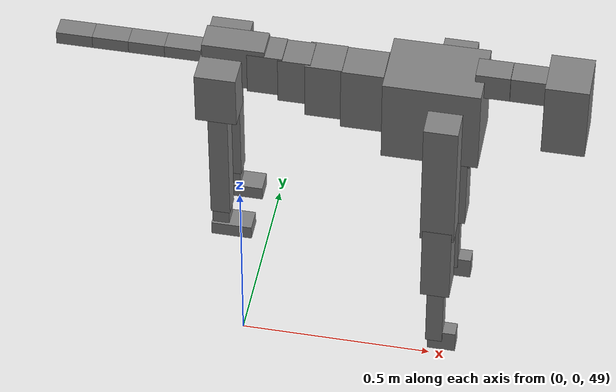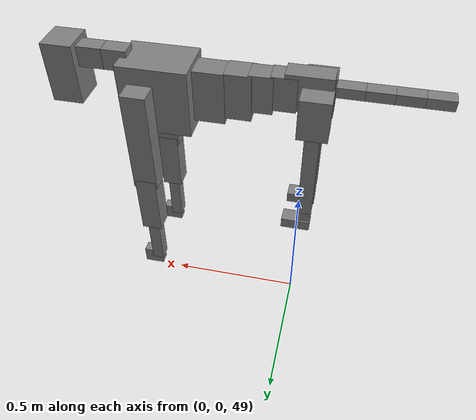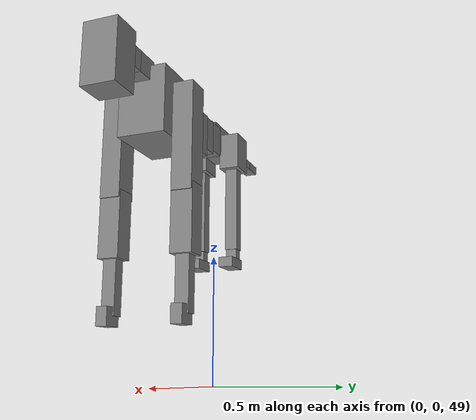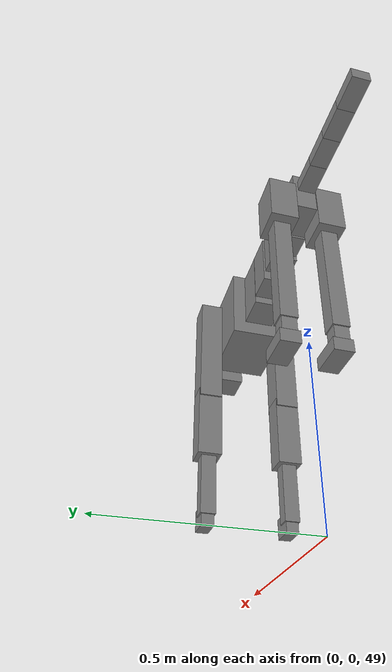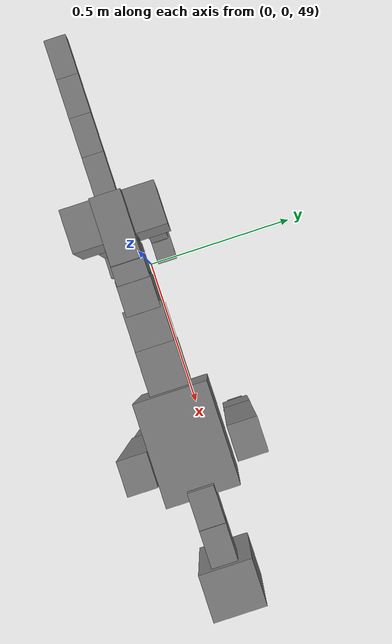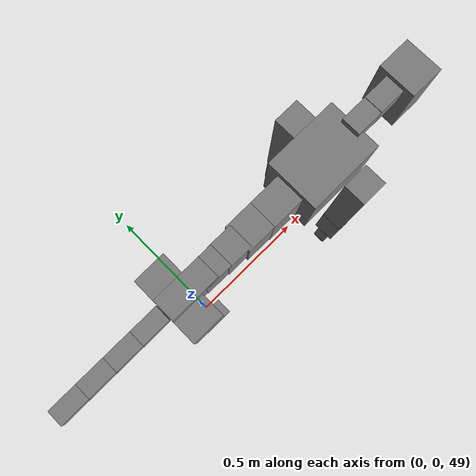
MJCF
<mujoco model="dog">

    <default>
        <joint armature="0.02" stiffness="1" damping="0.2" limited="true"/>
        <geom condim="3" friction="1 0.05 0.05" margin="0.01"/>
        <motor ctrllimited="true" ctrlrange="-1.0 1.0" forcelimited="true" gear="50"/>
    </default>

    <compiler inertiafromgeom="true" angle="radian"/>

    <option timestep="0.016" iterations="50" tolerance="1e-10" solver="Newton" jacobian="dense" cone="pyramidal"/>

    <size nconmax="20000" njmax="60000" nstack="5000000"/>
    <visual>
        <map force="0.1" zfar="30"/>
        <rgba haze="0.15 0.25 0.35 1"/>
        <quality shadowsize="2048"/>
        <global offwidth="800" offheight="800"/>
    </visual>

    <asset>
        <texture type="skybox" builtin="gradient" rgb1="0.3 0.5 0.7" rgb2="0 0 0" width="512" height="512"/>
        <texture name="texplane" type="2d" builtin="checker" rgb1=".2 .3 .4" rgb2=".1 0.15 0.2" width="512" height="512"
                 mark="cross" markrgb=".8 .8 .8"/>
        <texture name="texgeom" type="cube" builtin="flat" mark="cross" width="127" height="1278" rgb1="0.8 0.6 0.4"
                 rgb2="0.8 0.6 0.4" markrgb="1 1 1" random="0.01"/>

        <material name="matplane" reflectance="0.3" texture="texplane" texrepeat="1 1" texuniform="true"/>
        <material name="matgeom" texture="texgeom" texuniform="true" rgba="0.8 0.6 .4 1"/>
    </asset>

    <worldbody>
        <geom name="floor" pos="0 0 0" size="0 0 .25" type="plane" material="matplane" condim="3"/>

        <light directional="false" diffuse=".2 .2 .2" specular="0 0 0" pos="0 0 5" dir="0 0 -1" castshadow="false"/>
        <light mode="targetbodycom" target="torso" directional="false" diffuse=".8 .8 .8" specular="0.3 0.3 0.3"
               pos="0 0 4.0" dir="0 0 -1"/>

        <body name="root" pos="0 0 50">
            <freejoint name="root_1"/>
            <geom type="box" pos="0 0 -0.02" size="0.0774  0.0358  0.063" density="2030"/>

            <body name="spine1" pos="0.054 0 0">
                <joint name="spine1_y" axis="0 1 0" range="0 0.7" limited="true"/>
                <geom type="box" pos="0.02375 0 -0.03" size="0.04375  0.0375  0.05985" density="2030"/>

                <body name="spine2" pos="0.0612 0 0">
                    <joint name="spine2_y" axis="0 1 0" range="-0.15 0.15" limited="true"/>
                    <geom type="box" pos="0.03555  0  -0.04" size="0.04055  0.039  0.06615" density="2030"/>

                    <body name="spine3" pos="0.0730 0 0">
                        <joint name="spine3_y" axis="0 1 0" range="-0.15 0.15" limited="true"/>
                        <geom type="box" pos="0.03555  0  -0.057" size="0.04555  0.0445  0.081" density="2030"/>

                        <body name="spine4" pos="0.0780 0 0">
                            <joint name="spine4_y" axis="0 1 0" range="-0.15 0.15" limited="true"/>
                            <geom type="box" pos="0.05265  0  -0.07" size="0.05265  0.045  0.09135" density="2030"/>

                            <body name="torso" pos="0.1082 0 0">
                                <joint name="torso_y" axis="0 1 0" range="-0.15 0.15" limited="true"/>
                                <geom type="box" pos="0.11925  0  -0.085" size="0.11925  0.085  0.11745"
                                      density="2030"/>

                                <body name="neck1" pos="0.2160  0   0.0180">
                                    <joint name="neck1_y" axis="0 1 0" range="-1.2  -1" limited="true"/>
                                    <geom type="box" pos="0.0423  0  0" size="0.0423  0.03  0.036" density="2325"/>

                                    <body name="neck2" pos="0.0853  0  0">
                                        <joint name="neck2_y" axis="0 1 0" range="0.1  0" limited="true"/>
                                        <geom type="box" pos="0.0423  0  0" size="0.0423  0.03  0.036" density="2325"/>

                                        <body name="head" pos="0.0853  0  0">
                                            <joint name="head_y" axis="0 1 0" range="-0.3  -0.2" limited="true"/>
                                            <geom type="box" pos="0.0531  0  -0.055" size="0.0531  0.06  0.1044"
                                                  density="4030"/>

                                        </body>
                                    </body>
                                </body>

                                <body name="front_shoulder" pos="0.156  0   -0.0480">
                                    <joint name="front_shoulder_y" axis="0 1 0" range="-1 1.5" limited="true"/>
                                    <geom type="box" pos="0 0.13 -0.1577" size="0.0421  0.0360  0.1843" density="1158"/>
                                    <geom type="box" pos="0 -0.13 -0.1577" size="0.0421  0.0360  0.1843"
                                          density="1158"/>

                                    <body name="front_elbow" pos="0  0  -0.3153">
                                        <joint name="front_elbow_y" axis="0 1 0" range="-2 0" limited="true"/>
                                        <geom type="box" pos="0 0.13 -0.1144" size="0.0366  0.0374  0.1144"
                                              density="1081"/>
                                        <geom type="box" pos="0 -0.13 -0.1144" size="0.0366  0.0374  0.1144"
                                              density="1081"/>

                                        <body name="front_wrist" pos="0  0  -0.2288">
                                            <joint name="front_wrist_y" axis="0 1 0" range="-0.2 0" limited="true"/>
                                            <geom type="box" pos="0 0.13 -0.0853" size="0.0213  0.0236  0.0985"
                                                  density="1664"/>
                                            <geom type="box" pos="0 -0.13 -0.0853" size="0.0213  0.0236  0.0985"
                                                  density="1664"/>

                                            <body name="front_finger_end" pos="0  0  -0.1707">
                                                <joint name="front_finger_y" axis="0 1 0" range="-0.4 1"
                                                       limited="true"/>
                                                <geom type="box" pos="0.0194  0.13  -0.0161"
                                                      size="0.0356  0.0194  0.0311" density="1515"/>
                                                <geom type="box" pos="0.0194  -0.13  -0.0161"
                                                      size="0.0356  0.0194  0.0311" density="1515"/>

                                            </body>

                                        </body>
                                    </body>
                                </body>

                            </body>
                        </body>
                    </body>
                </body>
            </body>

            <body name="back_hip" pos="-0.03 0 -0.018">
                <joint name="back_hip_y" axis="0 1 0" range="-1.5 0.3" limited="true"/>
                <geom type="box" pos="0 0.07 -0.0487" size="0.0509  0.0399  0.0715" density="1154"/>
                <geom type="box" pos="0 -0.07 -0.0487" size="0.0509  0.0399  0.0715" density="1154"/>

                <body name="back_knee" pos="0  0  -0.0974">
                    <joint name="back_knee_y" axis="0 1 0" range="0 2.8" limited="true"/>
                    <geom type="box" pos="0 0.07 -0.1696" size="0.0245  0.0241  0.1852" density="1227"/>
                    <geom type="box" pos="0 -0.07 -0.1696" size="0.0245  0.0241  0.1852" density="1227"/>

                    <body name="back_ankle" pos="0  0  -0.3393">
                        <joint name="back_ankle_y" axis="0 1 0" range="-2.2 0" limited="true"/>
                        <geom type="box" pos="0 0.07 -0.0351" size="0.0210  0.0210  0.0464" density="1284"/>
                        <geom type="box" pos="0 -0.07 -0.0351" size="0.0210  0.0210  0.0464" density="1284"/>

                        <body name="back_toe_end" pos="0  0  -0.0702">
                            <joint name="back_toe_y" axis="0 1 0" range="-0.4 1" limited="true"/>
                            <geom type="box" pos="0.0280  0.07  -0.0040" size="0.0513  0.0280  0.0190" density="1515"/>
                            <geom type="box" pos="0.0280  -0.07  -0.0040" size="0.0513  0.0280  0.0190" density="1515"/>

                        </body>
                    </body>
                </body>
            </body>

            <body name="tail1" pos="-0.074 0 -0.006">
                <joint name="tail1_y" axis="0 1 0" range="-0.2 0.2" limited="true"/>
                <geom type="box" pos="-0.0536  0  0" size="0.045  0.025  0.0175" density="1587"/>

                <body name="tail2" pos="-0.09 0 0">
                    <joint name="tail2_y" axis="0 1 0" range="-0.2 0.2" limited="true"/>
                    <geom type="box" pos="-0.0536  0  0" size="0.045  0.025  0.0175" density="1587"/>

                    <body name="tail3" pos="-0.09 0 0">
                        <joint name="tail3_y" axis="0 1 0" range="-0.2 0.2" limited="true"/>
                        <geom type="box" pos="-0.0536  0  0" size="0.045  0.025  0.0175" density="1587"/>

                        <body name="tail4" pos="-0.09 0 0">
                            <joint name="tail4_y" axis="0 1 0" range="-0.2 0.2" limited="true"/>
                            <geom type="box" pos="-0.0536  0  0" size="0.045  0.025  0.0175" density="1587"/>

                        </body>
                    </body>
                </body>
            </body>
        </body>
    </worldbody>

    <actuator>
        <motor joint="spine1_y" forcerange="-150 150     "/>
        <motor joint="spine2_y" forcerange="-150 150     "/>
        <motor joint="spine3_y" forcerange="-150 150     "/>
        <motor joint="spine4_y" forcerange="-150 150     "/>
        <motor joint="torso_y" forcerange="-150 150     "/>
        <motor joint="neck1_y" forcerange="-100 100       "/>
        <motor joint="neck2_y" forcerange="-100 100       "/>
        <motor joint="head_y" forcerange="-150 150       "/>
        <motor joint="front_shoulder_y" forcerange="-141.74 198.19"/>
        <motor joint="front_elbow_y" forcerange="-194.42 177.38"/>
        <motor joint="front_wrist_y" forcerange="-97.06 92.04"/>
        <motor joint="front_finger_y" forcerange="-36.98 26.44"/>
        <motor joint="back_hip_y" forcerange="-346.74 385.67"/>
        <motor joint="back_knee_y" forcerange="-304.33 246.74"/>
        <motor joint="back_angle_y" forcerange="-71.10 165.06"/>
        <motor joint="back_toe_y" forcerange="-118.15 25.71"/>
        <motor joint="tail1_y" forcerange="-50 50     "/>
        <motor joint="tail2_y" forcerange="-50 50     "/>
        <motor joint="tail3_y" forcerange="-50 50     "/>
        <motor joint="tail4_y" forcerange="-50 50     "/>
    </actuator>
</mujoco>
